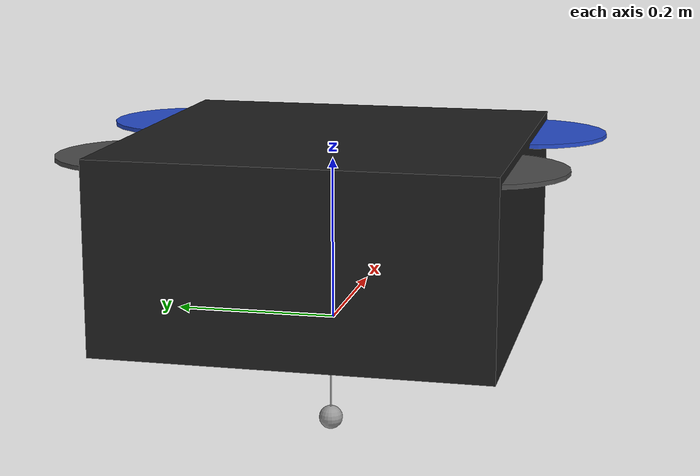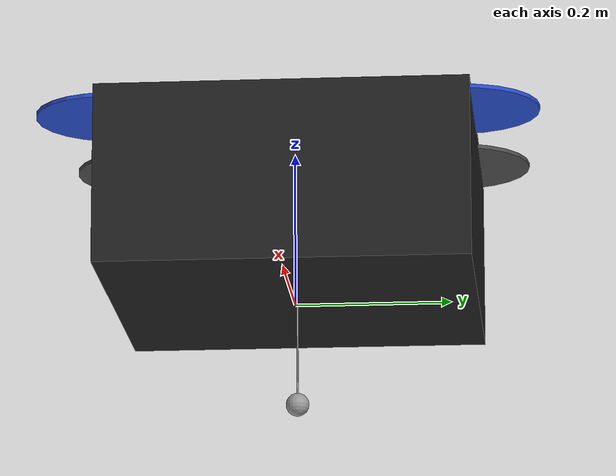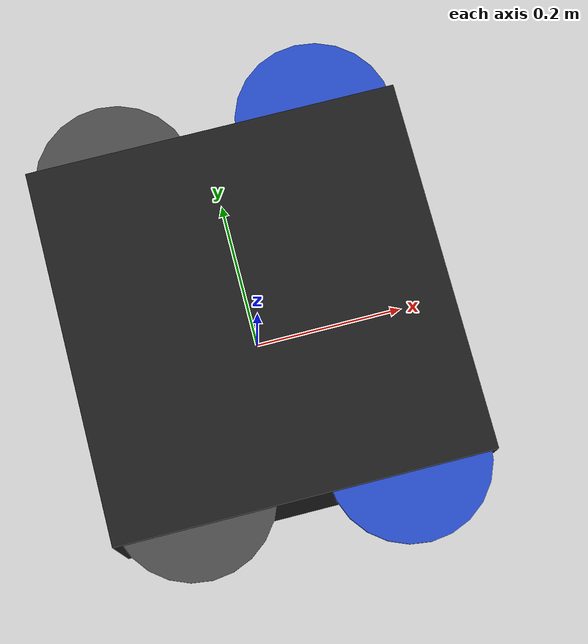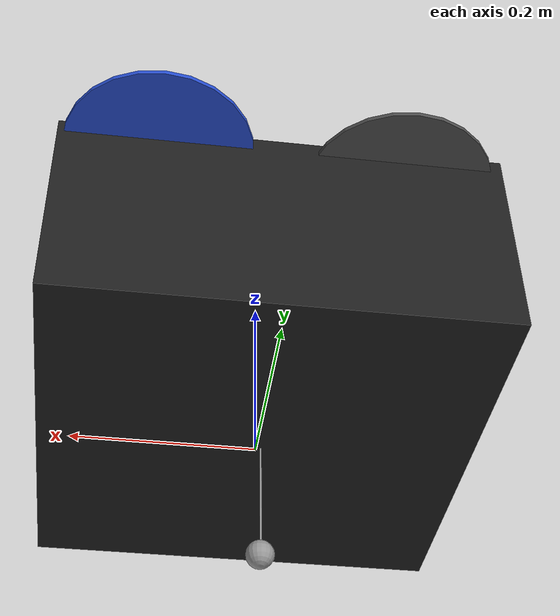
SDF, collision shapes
<?xml version='1.0'?>
<sdf version='1.7'>
  <model name='drone_kinect_fixed_rope5'>
    <link name='cam_link'>
      <pose>0.055559 0 -0.02 0 -0 0</pose>
      <inertial>
        <mass>0.01</mass>
        <inertia>
          <ixx>0.001</ixx>
          <iyy>0.001</iyy>
          <izz>0.001</izz>
          <ixy>0</ixy>
          <ixz>0</ixz>
          <iyz>0</iyz>
        </inertia>
        <pose>0 0 0 0 -0 0</pose>
      </inertial>
      <sensor name='cam' type='camera'>
        <pose>0 0 0.15 0 -0 0</pose>
        <camera>
          <horizontal_fov>1.2</horizontal_fov>
          <image>
            <width>640</width>
            <height>480</height>
          </image>
          <clip>
            <near>0.1</near>
            <far>1000</far>
          </clip>
        </camera>
        <always_on>1</always_on>
        <update_rate>30</update_rate>
        <visualize>1</visualize>
        <plugin name='camera_controller' filename='libgazebo_ros_camera.so'>
          <always_on>1</always_on>
          <update_rate>30</update_rate>
          <cameraName>webcam</cameraName>
          <imageTopicName>image_raw</imageTopicName>
          <cameraInfoTopicName>camera_info</cameraInfoTopicName>
          <frameName>camera_link</frameName>
        </plugin>
      </sensor>
      <self_collide>0</self_collide>
      <enable_wind>0</enable_wind>
      <kinematic>0</kinematic>
      <visual name='cam_link'>
        <pose>0 0 0.15 0 1.5707 0</pose>
        <geometry>
          <cylinder>
            <radius>0.005</radius>
            <length>0.018</length>
          </cylinder>
        </geometry>
        <material>
          <shader type='pixel'/>
        </material>
        <transparency>0</transparency>
        <cast_shadows>1</cast_shadows>
      </visual>
    </link>
    <link name='iris::base_link'>
      <velocity_decay>
        <linear>0</linear>
        <angular>0</angular>
      </velocity_decay>
      <inertial>
        <pose>0 0 0 0 -0 0</pose>
        <mass>1.5</mass>
        <inertia>
          <ixx>0.008</ixx>
          <ixy>0</ixy>
          <ixz>0</ixz>
          <iyy>0.015</iyy>
          <iyz>0</iyz>
          <izz>0.017</izz>
        </inertia>
      </inertial>
      <pose>0 0 0.195685 0 -0 0</pose>
      <self_collide>0</self_collide>
      <enable_wind>0</enable_wind>
      <kinematic>0</kinematic>
      <gravity>1</gravity>
      <visual name='front_right_leg_visual'>
        <pose>0.123 -0.22 -0.11 0 -0 0</pose>
        <geometry>
          <cylinder>
            <radius>0.005</radius>
            <length>0.17</length>
          </cylinder>
        </geometry>
        <material>
          <script>
            <name>Gazebo/FlatBlack</name>
            <uri>file://media/materials/scripts/gazebo.material</uri>
          </script>
          <shader type='pixel'/>
          <emissive>0 0 0 1</emissive>
        </material>
        <transparency>0</transparency>
        <cast_shadows>1</cast_shadows>
      </visual>
      <visual name='rear_right_leg_visual'>
        <pose>-0.14 -0.21 -0.11 0 -0 0</pose>
        <geometry>
          <cylinder>
            <radius>0.005</radius>
            <length>0.17</length>
          </cylinder>
        </geometry>
        <material>
          <script>
            <name>Gazebo/FlatBlack</name>
            <uri>file://media/materials/scripts/gazebo.material</uri>
          </script>
          <shader type='pixel'/>
          <emissive>0 0 0 1</emissive>
        </material>
        <transparency>0</transparency>
        <cast_shadows>1</cast_shadows>
      </visual>
      <visual name='base_link_visual'>
        <geometry>
          <mesh>
            <uri>model://iris_base/meshes/iris.dae</uri>
          </mesh>
        </geometry>
        <material>
          <script>
            <name>Gazebo/DarkGrey</name>
            <uri>__default__</uri>
          </script>
          <shader type='pixel'/>
          <emissive>0 0 0 1</emissive>
        </material>
        <pose>0 0 0 0 -0 0</pose>
        <transparency>0</transparency>
        <cast_shadows>1</cast_shadows>
      </visual>
      <visual name='front_left_leg_visual'>
        <pose>0.123 0.22 -0.11 0 -0 0</pose>
        <geometry>
          <cylinder>
            <radius>0.005</radius>
            <length>0.17</length>
          </cylinder>
        </geometry>
        <material>
          <script>
            <name>Gazebo/FlatBlack</name>
            <uri>file://media/materials/scripts/gazebo.material</uri>
          </script>
          <shader type='pixel'/>
          <emissive>0 0 0 1</emissive>
        </material>
        <transparency>0</transparency>
        <cast_shadows>1</cast_shadows>
      </visual>
      <visual name='rear_left_leg_visual'>
        <pose>-0.14 0.21 -0.11 0 -0 0</pose>
        <geometry>
          <cylinder>
            <radius>0.005</radius>
            <length>0.17</length>
          </cylinder>
        </geometry>
        <material>
          <script>
            <name>Gazebo/FlatBlack</name>
            <uri>file://media/materials/scripts/gazebo.material</uri>
          </script>
          <shader type='pixel'/>
          <emissive>0 0 0 1</emissive>
        </material>
        <transparency>0</transparency>
        <cast_shadows>1</cast_shadows>
      </visual>
      <collision name='base_link_collision'>
        <laser_retro>0</laser_retro>
        <max_contacts>10</max_contacts>
        <pose>0 0 -0.08 0 -0 0</pose>
        <geometry>
          <box>
            <size>0.47 0.47 0.23</size>
          </box>
        </geometry>
        <surface>
          <friction>
            <ode>
              <mu>1</mu>
              <mu2>1</mu2>
              <fdir1>0 0 0</fdir1>
              <slip1>0</slip1>
              <slip2>0</slip2>
            </ode>
            <torsional>
              <coefficient>1</coefficient>
              <patch_radius>0</patch_radius>
              <surface_radius>0</surface_radius>
              <use_patch_radius>1</use_patch_radius>
              <ode>
                <slip>0</slip>
              </ode>
            </torsional>
          </friction>
          <bounce>
            <restitution_coefficient>0</restitution_coefficient>
            <threshold>1e+06</threshold>
          </bounce>
          <contact>
            <collide_without_contact>0</collide_without_contact>
            <collide_without_contact_bitmask>1</collide_without_contact_bitmask>
            <collide_bitmask>1</collide_bitmask>
            <ode>
              <soft_cfm>0</soft_cfm>
              <soft_erp>0.2</soft_erp>
              <kp>1e+13</kp>
              <kd>1</kd>
              <max_vel>100</max_vel>
              <min_depth>0.001</min_depth>
            </ode>
            <bullet>
              <split_impulse>1</split_impulse>
              <split_impulse_penetration_threshold>-0.01</split_impulse_penetration_threshold>
              <soft_cfm>0</soft_cfm>
              <soft_erp>0.2</soft_erp>
              <kp>1e+13</kp>
              <kd>1</kd>
            </bullet>
          </contact>
        </surface>
      </collision>
    </link>
    <link name='iris::iris/ground_truth/odometry_sensorgt_link'>
      <pose>0 0 0.194923 0 -0 0</pose>
      <inertial>
        <pose>0 0 0 0 -0 0</pose>
        <mass>0.15</mass>
        <inertia>
          <ixx>0.0001</ixx>
          <ixy>0</ixy>
          <ixz>0</ixz>
          <iyy>0.0002</iyy>
          <iyz>0</iyz>
          <izz>0.0002</izz>
        </inertia>
      </inertial>
      <self_collide>0</self_collide>
      <enable_wind>0</enable_wind>
      <kinematic>0</kinematic>
    </link>
    <link name='iris::iris/imu_link'>
      <inertial>
        <pose>0 0 0 0 -0 0</pose>
        <mass>0.15</mass>
        <inertia>
          <ixx>1e-05</ixx>
          <ixy>0</ixy>
          <ixz>0</ixz>
          <iyy>2e-05</iyy>
          <iyz>0</iyz>
          <izz>2e-05</izz>
        </inertia>
      </inertial>
      <sensor name='imu_sensor' type='imu'>
        <pose>0 0 0 -3.14159 -0 0</pose>
        <always_on>1</always_on>
        <update_rate>1000</update_rate>
        <imu/>
      </sensor>
      <pose>0 0 0.194923 0 -0 0</pose>
      <self_collide>0</self_collide>
      <enable_wind>0</enable_wind>
      <kinematic>0</kinematic>
    </link>
    <link name='iris::rotor_0'>
      <pose>0.13 -0.22 0.217923 0 -0 0</pose>
      <inertial>
        <pose>0 0 0 0 -0 0</pose>
        <mass>0.025</mass>
        <inertia>
          <ixx>9.75e-06</ixx>
          <ixy>0</ixy>
          <ixz>0</ixz>
          <iyy>0.000166704</iyy>
          <iyz>0</iyz>
          <izz>0.000167604</izz>
        </inertia>
      </inertial>
      <gravity>1</gravity>
      <velocity_decay/>
      <self_collide>0</self_collide>
      <enable_wind>0</enable_wind>
      <kinematic>0</kinematic>
      <visual name='rotor_0_visual'>
        <pose>0 0 0 0 -0 0</pose>
        <geometry>
          <mesh>
            <scale>1 1 1</scale>
            <uri>model://iris_base/meshes/iris_prop_ccw.dae</uri>
          </mesh>
        </geometry>
        <material>
          <script>
            <name>Gazebo/Blue</name>
            <uri>__default__</uri>
          </script>
          <shader type='pixel'/>
          <emissive>0 0 0 1</emissive>
        </material>
        <transparency>0</transparency>
        <cast_shadows>1</cast_shadows>
      </visual>
      <collision name='rotor_0_collision'>
        <laser_retro>0</laser_retro>
        <max_contacts>10</max_contacts>
        <pose>0 0 0 0 -0 0</pose>
        <geometry>
          <cylinder>
            <radius>0.1</radius>
            <length>0.005</length>
          </cylinder>
        </geometry>
        <surface>
          <friction>
            <ode>
              <mu>1</mu>
              <mu2>1</mu2>
              <fdir1>0 0 0</fdir1>
              <slip1>0</slip1>
              <slip2>0</slip2>
            </ode>
            <torsional>
              <coefficient>1</coefficient>
              <patch_radius>0</patch_radius>
              <surface_radius>0</surface_radius>
              <use_patch_radius>1</use_patch_radius>
              <ode>
                <slip>0</slip>
              </ode>
            </torsional>
          </friction>
          <bounce>
            <restitution_coefficient>0</restitution_coefficient>
            <threshold>1e+06</threshold>
          </bounce>
          <contact>
            <collide_without_contact>0</collide_without_contact>
            <collide_without_contact_bitmask>1</collide_without_contact_bitmask>
            <collide_bitmask>1</collide_bitmask>
            <ode>
              <soft_cfm>0</soft_cfm>
              <soft_erp>0.2</soft_erp>
              <kp>1e+13</kp>
              <kd>1</kd>
              <max_vel>0.01</max_vel>
              <min_depth>0</min_depth>
            </ode>
            <bullet>
              <split_impulse>1</split_impulse>
              <split_impulse_penetration_threshold>-0.01</split_impulse_penetration_threshold>
              <soft_cfm>0</soft_cfm>
              <soft_erp>0.2</soft_erp>
              <kp>1e+13</kp>
              <kd>1</kd>
            </bullet>
          </contact>
        </surface>
      </collision>
    </link>
    <link name='iris::rotor_1'>
      <pose>-0.13 0.2 0.217923 0 -0 0</pose>
      <inertial>
        <pose>0 0 0 0 -0 0</pose>
        <mass>0.025</mass>
        <inertia>
          <ixx>9.75e-06</ixx>
          <ixy>0</ixy>
          <ixz>0</ixz>
          <iyy>0.000166704</iyy>
          <iyz>0</iyz>
          <izz>0.000167604</izz>
        </inertia>
      </inertial>
      <gravity>1</gravity>
      <velocity_decay/>
      <self_collide>0</self_collide>
      <enable_wind>0</enable_wind>
      <kinematic>0</kinematic>
      <visual name='rotor_1_visual'>
        <pose>0 0 0 0 -0 0</pose>
        <geometry>
          <mesh>
            <scale>1 1 1</scale>
            <uri>model://iris_base/meshes/iris_prop_ccw.dae</uri>
          </mesh>
        </geometry>
        <material>
          <script>
            <name>Gazebo/DarkGrey</name>
            <uri>__default__</uri>
          </script>
          <shader type='pixel'/>
        </material>
        <transparency>0</transparency>
        <cast_shadows>1</cast_shadows>
      </visual>
      <collision name='rotor_1_collision'>
        <laser_retro>0</laser_retro>
        <max_contacts>10</max_contacts>
        <pose>0 0 0 0 -0 0</pose>
        <geometry>
          <cylinder>
            <radius>0.1</radius>
            <length>0.005</length>
          </cylinder>
        </geometry>
        <surface>
          <friction>
            <ode>
              <mu>1</mu>
              <mu2>1</mu2>
              <fdir1>0 0 0</fdir1>
              <slip1>0</slip1>
              <slip2>0</slip2>
            </ode>
            <torsional>
              <coefficient>1</coefficient>
              <patch_radius>0</patch_radius>
              <surface_radius>0</surface_radius>
              <use_patch_radius>1</use_patch_radius>
              <ode>
                <slip>0</slip>
              </ode>
            </torsional>
          </friction>
          <bounce>
            <restitution_coefficient>0</restitution_coefficient>
            <threshold>1e+06</threshold>
          </bounce>
          <contact>
            <collide_without_contact>0</collide_without_contact>
            <collide_without_contact_bitmask>1</collide_without_contact_bitmask>
            <collide_bitmask>1</collide_bitmask>
            <ode>
              <soft_cfm>0</soft_cfm>
              <soft_erp>0.2</soft_erp>
              <kp>1e+13</kp>
              <kd>1</kd>
              <max_vel>0.01</max_vel>
              <min_depth>0</min_depth>
            </ode>
            <bullet>
              <split_impulse>1</split_impulse>
              <split_impulse_penetration_threshold>-0.01</split_impulse_penetration_threshold>
              <soft_cfm>0</soft_cfm>
              <soft_erp>0.2</soft_erp>
              <kp>1e+13</kp>
              <kd>1</kd>
            </bullet>
          </contact>
        </surface>
      </collision>
    </link>
    <link name='iris::rotor_2'>
      <pose>0.13 0.22 0.217923 0 -0 0</pose>
      <inertial>
        <pose>0 0 0 0 -0 0</pose>
        <mass>0.025</mass>
        <inertia>
          <ixx>9.75e-06</ixx>
          <ixy>0</ixy>
          <ixz>0</ixz>
          <iyy>0.000166704</iyy>
          <iyz>0</iyz>
          <izz>0.000167604</izz>
        </inertia>
      </inertial>
      <gravity>1</gravity>
      <velocity_decay/>
      <self_collide>0</self_collide>
      <enable_wind>0</enable_wind>
      <kinematic>0</kinematic>
      <visual name='rotor_2_visual'>
        <pose>0 0 0 0 -0 0</pose>
        <geometry>
          <mesh>
            <scale>1 1 1</scale>
            <uri>model://iris_base/meshes/iris_prop_cw.dae</uri>
          </mesh>
        </geometry>
        <material>
          <script>
            <name>Gazebo/Blue</name>
            <uri>__default__</uri>
          </script>
          <shader type='pixel'/>
        </material>
        <transparency>0</transparency>
        <cast_shadows>1</cast_shadows>
      </visual>
      <collision name='rotor_2_collision'>
        <laser_retro>0</laser_retro>
        <max_contacts>10</max_contacts>
        <pose>0 0 0 0 -0 0</pose>
        <geometry>
          <cylinder>
            <radius>0.1</radius>
            <length>0.005</length>
          </cylinder>
        </geometry>
        <surface>
          <friction>
            <ode>
              <mu>1</mu>
              <mu2>1</mu2>
              <fdir1>0 0 0</fdir1>
              <slip1>0</slip1>
              <slip2>0</slip2>
            </ode>
            <torsional>
              <coefficient>1</coefficient>
              <patch_radius>0</patch_radius>
              <surface_radius>0</surface_radius>
              <use_patch_radius>1</use_patch_radius>
              <ode>
                <slip>0</slip>
              </ode>
            </torsional>
          </friction>
          <bounce>
            <restitution_coefficient>0</restitution_coefficient>
            <threshold>1e+06</threshold>
          </bounce>
          <contact>
            <collide_without_contact>0</collide_without_contact>
            <collide_without_contact_bitmask>1</collide_without_contact_bitmask>
            <collide_bitmask>1</collide_bitmask>
            <ode>
              <soft_cfm>0</soft_cfm>
              <soft_erp>0.2</soft_erp>
              <kp>1e+13</kp>
              <kd>1</kd>
              <max_vel>0.01</max_vel>
              <min_depth>0</min_depth>
            </ode>
            <bullet>
              <split_impulse>1</split_impulse>
              <split_impulse_penetration_threshold>-0.01</split_impulse_penetration_threshold>
              <soft_cfm>0</soft_cfm>
              <soft_erp>0.2</soft_erp>
              <kp>1e+13</kp>
              <kd>1</kd>
            </bullet>
          </contact>
        </surface>
      </collision>
    </link>
    <link name='iris::rotor_3'>
      <pose>-0.13 -0.2 0.217923 0 -0 0</pose>
      <inertial>
        <pose>0 0 0 0 -0 0</pose>
        <mass>0.025</mass>
        <inertia>
          <ixx>9.75e-06</ixx>
          <ixy>0</ixy>
          <ixz>0</ixz>
          <iyy>0.000166704</iyy>
          <iyz>0</iyz>
          <izz>0.000167604</izz>
        </inertia>
      </inertial>
      <gravity>1</gravity>
      <velocity_decay/>
      <self_collide>0</self_collide>
      <enable_wind>0</enable_wind>
      <kinematic>0</kinematic>
      <visual name='rotor_3_visual'>
        <pose>0 0 0 0 -0 0</pose>
        <geometry>
          <mesh>
            <scale>1 1 1</scale>
            <uri>model://iris_base/meshes/iris_prop_cw.dae</uri>
          </mesh>
        </geometry>
        <material>
          <script>
            <name>Gazebo/DarkGrey</name>
            <uri>__default__</uri>
          </script>
          <shader type='pixel'/>
          <emissive>0 0 0 1</emissive>
        </material>
        <transparency>0</transparency>
        <cast_shadows>1</cast_shadows>
      </visual>
      <collision name='rotor_3_collision'>
        <laser_retro>0</laser_retro>
        <max_contacts>10</max_contacts>
        <pose>0 0 0 0 -0 0</pose>
        <geometry>
          <cylinder>
            <radius>0.1</radius>
            <length>0.005</length>
          </cylinder>
        </geometry>
        <surface>
          <friction>
            <ode>
              <mu>1</mu>
              <mu2>1</mu2>
              <fdir1>0 0 0</fdir1>
              <slip1>0</slip1>
              <slip2>0</slip2>
            </ode>
            <torsional>
              <coefficient>1</coefficient>
              <patch_radius>0</patch_radius>
              <surface_radius>0</surface_radius>
              <use_patch_radius>1</use_patch_radius>
              <ode>
                <slip>0</slip>
              </ode>
            </torsional>
          </friction>
          <bounce>
            <restitution_coefficient>0</restitution_coefficient>
            <threshold>1e+06</threshold>
          </bounce>
          <contact>
            <collide_without_contact>0</collide_without_contact>
            <collide_without_contact_bitmask>1</collide_without_contact_bitmask>
            <collide_bitmask>1</collide_bitmask>
            <ode>
              <soft_cfm>0</soft_cfm>
              <soft_erp>0.2</soft_erp>
              <kp>1e+13</kp>
              <kd>1</kd>
              <max_vel>0.01</max_vel>
              <min_depth>0</min_depth>
            </ode>
            <bullet>
              <split_impulse>1</split_impulse>
              <split_impulse_penetration_threshold>-0.01</split_impulse_penetration_threshold>
              <soft_cfm>0</soft_cfm>
              <soft_erp>0.2</soft_erp>
              <kp>1e+13</kp>
              <kd>1</kd>
            </bullet>
          </contact>
        </surface>
      </collision>
    </link>
    <link name='link_0'>
      <inertial>
        <mass>0.0005</mass>
        <inertia>
          <ixx>3.76e-06</ixx>
          <ixy>0</ixy>
          <ixz>0</ixz>
          <iyy>3.76e-06</iyy>
          <iyz>0</iyz>
          <izz>3e-08</izz>
        </inertia>
        <pose>0 0 0 0 -0 0</pose>
      </inertial>
      <pose>-0.005226 0.001963 0.022099 0.000603 -2e-06 0</pose>
      <gravity>1</gravity>
      <self_collide>0</self_collide>
      <kinematic>0</kinematic>
      <enable_wind>0</enable_wind>
      <visual name='visual'>
        <pose>0 0 0 0 -0 0</pose>
        <geometry>
          <cylinder>
            <radius>0.001</radius>
            <length>0.3</length>
          </cylinder>
        </geometry>
        <material>
          <lighting>1</lighting>
          <script>
            <uri>file://media/materials/scripts/gazebo.material</uri>
            <name>Gazebo/Grey</name>
          </script>
          <shader type='pixel'>
            <normal_map>__default__</normal_map>
          </shader>
          <ambient>0.3 0.3 0.3 1</ambient>
          <diffuse>0.7 0.7 0.7 1</diffuse>
          <specular>0.01 0.01 0.01 1</specular>
          <emissive>0 0 0 1</emissive>
        </material>
        <transparency>0</transparency>
        <cast_shadows>1</cast_shadows>
      </visual>
      <collision name='collision'>
        <laser_retro>0</laser_retro>
        <max_contacts>10</max_contacts>
        <pose>0 0 0 0 -0 0</pose>
        <geometry>
          <cylinder>
            <radius>0.001</radius>
            <length>0.3</length>
          </cylinder>
        </geometry>
        <surface>
          <friction>
            <ode>
              <mu>1</mu>
              <mu2>1</mu2>
              <fdir1>0 0 0</fdir1>
              <slip1>0</slip1>
              <slip2>0</slip2>
            </ode>
            <torsional>
              <coefficient>1</coefficient>
              <patch_radius>0</patch_radius>
              <surface_radius>0</surface_radius>
              <use_patch_radius>1</use_patch_radius>
              <ode>
                <slip>0</slip>
              </ode>
            </torsional>
          </friction>
          <bounce>
            <restitution_coefficient>0</restitution_coefficient>
            <threshold>1e+06</threshold>
          </bounce>
          <contact>
            <collide_without_contact>0</collide_without_contact>
            <collide_without_contact_bitmask>1</collide_without_contact_bitmask>
            <collide_bitmask>1</collide_bitmask>
            <ode>
              <soft_cfm>0</soft_cfm>
              <soft_erp>0.2</soft_erp>
              <kp>1e+13</kp>
              <kd>1</kd>
              <max_vel>0.01</max_vel>
              <min_depth>0</min_depth>
            </ode>
            <bullet>
              <split_impulse>1</split_impulse>
              <split_impulse_penetration_threshold>-0.01</split_impulse_penetration_threshold>
              <soft_cfm>0</soft_cfm>
              <soft_erp>0.2</soft_erp>
              <kp>1e+13</kp>
              <kd>1</kd>
            </bullet>
          </contact>
        </surface>
      </collision>
    </link>
    <link name='link_1'>
      <inertial>
        <mass>0.003</mass>
        <inertia>
          <ixx>4.8e-07</ixx>
          <ixy>0</ixy>
          <ixz>0</ixz>
          <iyy>4.8e-07</iyy>
          <iyz>0</iyz>
          <izz>4.8e-07</izz>
        </inertia>
        <pose>0 0 0 0 -0 0</pose>
      </inertial>
      <pose>-0.004309 0.00203 -0.130135 0.000603 -2e-06 0</pose>
      <gravity>1</gravity>
      <self_collide>0</self_collide>
      <kinematic>0</kinematic>
      <enable_wind>0</enable_wind>
      <visual name='visual'>
        <pose>0 0 0 0 -0 0</pose>
        <geometry>
          <sphere>
            <radius>0.015</radius>
          </sphere>
        </geometry>
        <material>
          <lighting>1</lighting>
          <script>
            <uri>file://media/materials/scripts/gazebo.material</uri>
            <name>Gazebo/Grey</name>
          </script>
          <shader type='pixel'>
            <normal_map>__default__</normal_map>
          </shader>
          <ambient>0.3 0.3 0.3 1</ambient>
          <diffuse>0.7 0.7 0.7 1</diffuse>
          <specular>0.01 0.01 0.01 1</specular>
          <emissive>0 0 0 1</emissive>
        </material>
        <transparency>0</transparency>
        <cast_shadows>1</cast_shadows>
      </visual>
      <collision name='collision'>
        <laser_retro>0</laser_retro>
        <max_contacts>10</max_contacts>
        <pose>0 0 0 0 -0 0</pose>
        <geometry>
          <sphere>
            <radius>0.015</radius>
          </sphere>
        </geometry>
        <surface>
          <friction>
            <ode>
              <mu>1</mu>
              <mu2>1</mu2>
              <fdir1>0 0 0</fdir1>
              <slip1>0</slip1>
              <slip2>0</slip2>
            </ode>
            <torsional>
              <coefficient>1</coefficient>
              <patch_radius>0</patch_radius>
              <surface_radius>0</surface_radius>
              <use_patch_radius>1</use_patch_radius>
              <ode>
                <slip>0</slip>
              </ode>
            </torsional>
          </friction>
          <bounce>
            <restitution_coefficient>0</restitution_coefficient>
            <threshold>1e+06</threshold>
          </bounce>
          <contact>
            <collide_without_contact>0</collide_without_contact>
            <collide_without_contact_bitmask>1</collide_without_contact_bitmask>
            <collide_bitmask>1</collide_bitmask>
            <ode>
              <soft_cfm>0</soft_cfm>
              <soft_erp>0.2</soft_erp>
              <kp>1e+13</kp>
              <kd>1</kd>
              <max_vel>0.01</max_vel>
              <min_depth>0</min_depth>
            </ode>
            <bullet>
              <split_impulse>1</split_impulse>
              <split_impulse_penetration_threshold>-0.01</split_impulse_penetration_threshold>
              <soft_cfm>0</soft_cfm>
              <soft_erp>0.2</soft_erp>
              <kp>1e+13</kp>
              <kd>1</kd>
            </bullet>
          </contact>
        </surface>
      </collision>
    </link>
    <joint name='base_link_JOINT_0' type='ball'>
      <parent>iris::base_link</parent>
      <child>link_0</child>
      <pose>0 0 0.2 0 -0 0</pose>
      <physics>
        <ode>
          <limit>
            <cfm>0</cfm>
            <erp>0.2</erp>
          </limit>
          <suspension>
            <cfm>0</cfm>
            <erp>0.2</erp>
          </suspension>
        </ode>
      </physics>
    </joint>
    <joint name='camera_mount' type='fixed'>
      <parent>iris::base_link</parent>
      <child>cam_link</child>
      <pose>0 0 0 0 -0 0</pose>
      <physics>
        <ode>
          <limit>
            <cfm>0</cfm>
            <erp>0.2</erp>
          </limit>
          <suspension>
            <cfm>0</cfm>
            <erp>0.2</erp>
          </suspension>
        </ode>
      </physics>
    </joint>
    <joint name='iris::iris/ground_truth/odometry_sensorgt_joint' type='revolute'>
      <parent>iris::base_link</parent>
      <child>iris::iris/ground_truth/odometry_sensorgt_link</child>
      <pose>0 0 0 0 -0 0</pose>
      <axis>
        <xyz>0 0 1</xyz>
        <limit>
          <lower>0</lower>
          <upper>0</upper>
          <effort>0</effort>
          <velocity>0</velocity>
        </limit>
        <dynamics>
          <spring_reference>0</spring_reference>
          <spring_stiffness>0</spring_stiffness>
          <damping>1</damping>
          <friction>0</friction>
        </dynamics>
      </axis>
      <physics>
        <ode>
          <limit>
            <cfm>0</cfm>
            <erp>0.2</erp>
          </limit>
          <suspension>
            <cfm>0</cfm>
            <erp>0.2</erp>
          </suspension>
        </ode>
      </physics>
    </joint>
    <joint name='iris::iris/imu_joint' type='revolute'>
      <parent>iris::base_link</parent>
      <child>iris::iris/imu_link</child>
      <pose>0 0 0 0 -0 0</pose>
      <axis>
        <xyz>0 0 1</xyz>
        <limit>
          <lower>0</lower>
          <upper>0</upper>
          <effort>0</effort>
          <velocity>0</velocity>
        </limit>
        <dynamics>
          <spring_reference>0</spring_reference>
          <spring_stiffness>0</spring_stiffness>
          <damping>1</damping>
          <friction>0</friction>
        </dynamics>
      </axis>
      <physics>
        <ode>
          <limit>
            <cfm>0</cfm>
            <erp>0.2</erp>
          </limit>
          <suspension>
            <cfm>0</cfm>
            <erp>0.2</erp>
          </suspension>
        </ode>
      </physics>
    </joint>
    <joint name='iris::rotor_0_joint' type='revolute'>
      <parent>iris::base_link</parent>
      <child>iris::rotor_0</child>
      <pose>0 0 0 0 -0 0</pose>
      <axis>
        <xyz>0 0 1</xyz>
        <limit>
          <lower>-1e+16</lower>
          <upper>1e+16</upper>
          <effort>-1</effort>
          <velocity>-1</velocity>
        </limit>
        <dynamics>
          <spring_reference>0</spring_reference>
          <spring_stiffness>0</spring_stiffness>
          <damping>0.004</damping>
          <friction>0</friction>
        </dynamics>
      </axis>
      <physics>
        <ode>
          <limit>
            <cfm>0</cfm>
            <erp>0.2</erp>
          </limit>
          <suspension>
            <cfm>0</cfm>
            <erp>0.2</erp>
          </suspension>
        </ode>
      </physics>
    </joint>
    <joint name='iris::rotor_1_joint' type='revolute'>
      <parent>iris::base_link</parent>
      <child>iris::rotor_1</child>
      <pose>0 0 0 0 -0 0</pose>
      <axis>
        <xyz>0 0 1</xyz>
        <limit>
          <lower>-1e+16</lower>
          <upper>1e+16</upper>
          <effort>-1</effort>
          <velocity>-1</velocity>
        </limit>
        <dynamics>
          <spring_reference>0</spring_reference>
          <spring_stiffness>0</spring_stiffness>
          <damping>0.004</damping>
          <friction>0</friction>
        </dynamics>
      </axis>
      <physics>
        <ode>
          <limit>
            <cfm>0</cfm>
            <erp>0.2</erp>
          </limit>
          <suspension>
            <cfm>0</cfm>
            <erp>0.2</erp>
          </suspension>
        </ode>
      </physics>
    </joint>
    <joint name='iris::rotor_2_joint' type='revolute'>
      <parent>iris::base_link</parent>
      <child>iris::rotor_2</child>
      <pose>0 0 0 0 -0 0</pose>
      <axis>
        <xyz>0 0 1</xyz>
        <limit>
          <lower>-1e+16</lower>
          <upper>1e+16</upper>
          <effort>-1</effort>
          <velocity>-1</velocity>
        </limit>
        <dynamics>
          <spring_reference>0</spring_reference>
          <spring_stiffness>0</spring_stiffness>
          <damping>0.004</damping>
          <friction>0</friction>
        </dynamics>
      </axis>
      <physics>
        <ode>
          <limit>
            <cfm>0</cfm>
            <erp>0.2</erp>
          </limit>
          <suspension>
            <cfm>0</cfm>
            <erp>0.2</erp>
          </suspension>
        </ode>
      </physics>
    </joint>
    <joint name='iris::rotor_3_joint' type='revolute'>
      <parent>iris::base_link</parent>
      <child>iris::rotor_3</child>
      <pose>0 0 0 0 -0 0</pose>
      <axis>
        <xyz>0 0 1</xyz>
        <limit>
          <lower>-1e+16</lower>
          <upper>1e+16</upper>
          <effort>-1</effort>
          <velocity>-1</velocity>
        </limit>
        <dynamics>
          <spring_reference>0</spring_reference>
          <spring_stiffness>0</spring_stiffness>
          <damping>0.004</damping>
          <friction>0</friction>
        </dynamics>
      </axis>
      <physics>
        <ode>
          <limit>
            <cfm>0</cfm>
            <erp>0.2</erp>
          </limit>
          <suspension>
            <cfm>0</cfm>
            <erp>0.2</erp>
          </suspension>
        </ode>
      </physics>
    </joint>
    <joint name='link_0_JOINT_1' type='fixed'>
      <parent>link_0</parent>
      <child>link_1</child>
      <pose>0 0 -0 0 -0 0</pose>
      <physics>
        <ode>
          <limit>
            <cfm>0</cfm>
            <erp>0.2</erp>
          </limit>
          <suspension>
            <cfm>0</cfm>
            <erp>0.2</erp>
          </suspension>
        </ode>
      </physics>
    </joint>
    <static>0</static>
    <allow_auto_disable>1</allow_auto_disable>
    <plugin name='arducopter_plugin' filename='libArduPilotPlugin.so'>
      <fdm_addr>127.0.0.1</fdm_addr>
      <fdm_port_in>9002</fdm_port_in>
      <fdm_port_out>9003</fdm_port_out>
      <modelXYZToAirplaneXForwardZDown>0 0 0 3.141593 0 0</modelXYZToAirplaneXForwardZDown>
      <gazeboXYZToNED>0 0 0 3.141593 0 0</gazeboXYZToNED>
      <imuName>iris::iris/imu_link::imu_sensor</imuName>
      <connectionTimeoutMaxCount>5</connectionTimeoutMaxCount>
      <control channel='0'>
        <type>VELOCITY</type>
        <offset>0</offset>
        <p_gain>0.20</p_gain>
        <i_gain>0</i_gain>
        <d_gain>0</d_gain>
        <i_max>0</i_max>
        <i_min>0</i_min>
        <cmd_max>2.5</cmd_max>
        <cmd_min>-2.5</cmd_min>
        <jointName>iris::rotor_0_joint</jointName>
        <multiplier>838</multiplier>
        <controlVelocitySlowdownSim>1</controlVelocitySlowdownSim>
      </control>
      <control channel='1'>
        <type>VELOCITY</type>
        <offset>0</offset>
        <p_gain>0.20</p_gain>
        <i_gain>0</i_gain>
        <d_gain>0</d_gain>
        <i_max>0</i_max>
        <i_min>0</i_min>
        <cmd_max>2.5</cmd_max>
        <cmd_min>-2.5</cmd_min>
        <jointName>iris::rotor_1_joint</jointName>
        <multiplier>838</multiplier>
        <controlVelocitySlowdownSim>1</controlVelocitySlowdownSim>
      </control>
      <control channel='2'>
        <type>VELOCITY</type>
        <offset>0</offset>
        <p_gain>0.20</p_gain>
        <i_gain>0</i_gain>
        <d_gain>0</d_gain>
        <i_max>0</i_max>
        <i_min>0</i_min>
        <cmd_max>2.5</cmd_max>
        <cmd_min>-2.5</cmd_min>
        <jointName>iris::rotor_2_joint</jointName>
        <multiplier>-838</multiplier>
        <controlVelocitySlowdownSim>1</controlVelocitySlowdownSim>
      </control>
      <control channel='3'>
        <type>VELOCITY</type>
        <offset>0</offset>
        <p_gain>0.20</p_gain>
        <i_gain>0</i_gain>
        <d_gain>0</d_gain>
        <i_max>0</i_max>
        <i_min>0</i_min>
        <cmd_max>2.5</cmd_max>
        <cmd_min>-2.5</cmd_min>
        <jointName>iris::rotor_3_joint</jointName>
        <multiplier>-838</multiplier>
        <controlVelocitySlowdownSim>1</controlVelocitySlowdownSim>
      </control>
    </plugin>
    <plugin name='rotor_0_blade_1' filename='libLiftDragPlugin.so'>
      <a0>0.3</a0>
      <alpha_stall>1.4</alpha_stall>
      <cla>4.2500</cla>
      <cda>0.10</cda>
      <cma>0.00</cma>
      <cla_stall>-0.025</cla_stall>
      <cda_stall>0.0</cda_stall>
      <cma_stall>0.0</cma_stall>
      <area>0.002</area>
      <air_density>1.2041</air_density>
      <cp>0.084 0 0</cp>
      <forward>0 1 0</forward>
      <upward>0 0 1</upward>
      <link_name>iris::rotor_0</link_name>
    </plugin>
    <plugin name='rotor_0_blade_2' filename='libLiftDragPlugin.so'>
      <a0>0.3</a0>
      <alpha_stall>1.4</alpha_stall>
      <cla>4.2500</cla>
      <cda>0.10</cda>
      <cma>0.00</cma>
      <cla_stall>-0.025</cla_stall>
      <cda_stall>0.0</cda_stall>
      <cma_stall>0.0</cma_stall>
      <area>0.002</area>
      <air_density>1.2041</air_density>
      <cp>-0.084 0 0</cp>
      <forward>0 -1 0</forward>
      <upward>0 0 1</upward>
      <link_name>iris::rotor_0</link_name>
    </plugin>
    <plugin name='rotor_1_blade_1' filename='libLiftDragPlugin.so'>
      <a0>0.3</a0>
      <alpha_stall>1.4</alpha_stall>
      <cla>4.2500</cla>
      <cda>0.10</cda>
      <cma>0.00</cma>
      <cla_stall>-0.025</cla_stall>
      <cda_stall>0.0</cda_stall>
      <cma_stall>0.0</cma_stall>
      <area>0.002</area>
      <air_density>1.2041</air_density>
      <cp>0.084 0 0</cp>
      <forward>0 1 0</forward>
      <upward>0 0 1</upward>
      <link_name>iris::rotor_1</link_name>
    </plugin>
    <plugin name='rotor_1_blade_2' filename='libLiftDragPlugin.so'>
      <a0>0.3</a0>
      <alpha_stall>1.4</alpha_stall>
      <cla>4.2500</cla>
      <cda>0.10</cda>
      <cma>0.00</cma>
      <cla_stall>-0.025</cla_stall>
      <cda_stall>0.0</cda_stall>
      <cma_stall>0.0</cma_stall>
      <area>0.002</area>
      <air_density>1.2041</air_density>
      <cp>-0.084 0 0</cp>
      <forward>0 -1 0</forward>
      <upward>0 0 1</upward>
      <link_name>iris::rotor_1</link_name>
    </plugin>
    <plugin name='rotor_2_blade_1' filename='libLiftDragPlugin.so'>
      <a0>0.3</a0>
      <alpha_stall>1.4</alpha_stall>
      <cla>4.2500</cla>
      <cda>0.10</cda>
      <cma>0.00</cma>
      <cla_stall>-0.025</cla_stall>
      <cda_stall>0.0</cda_stall>
      <cma_stall>0.0</cma_stall>
      <area>0.002</area>
      <air_density>1.2041</air_density>
      <cp>0.084 0 0</cp>
      <forward>0 -1 0</forward>
      <upward>0 0 1</upward>
      <link_name>iris::rotor_2</link_name>
    </plugin>
    <plugin name='rotor_2_blade_2' filename='libLiftDragPlugin.so'>
      <a0>0.3</a0>
      <alpha_stall>1.4</alpha_stall>
      <cla>4.2500</cla>
      <cda>0.10</cda>
      <cma>0.00</cma>
      <cla_stall>-0.025</cla_stall>
      <cda_stall>0.0</cda_stall>
      <cma_stall>0.0</cma_stall>
      <area>0.002</area>
      <air_density>1.2041</air_density>
      <cp>-0.084 0 0</cp>
      <forward>0 1 0</forward>
      <upward>0 0 1</upward>
      <link_name>iris::rotor_2</link_name>
    </plugin>
    <plugin name='rotor_3_blade_1' filename='libLiftDragPlugin.so'>
      <a0>0.3</a0>
      <alpha_stall>1.4</alpha_stall>
      <cla>4.2500</cla>
      <cda>0.10</cda>
      <cma>0.00</cma>
      <cla_stall>-0.025</cla_stall>
      <cda_stall>0.0</cda_stall>
      <cma_stall>0.0</cma_stall>
      <area>0.002</area>
      <air_density>1.2041</air_density>
      <cp>0.084 0 0</cp>
      <forward>0 -1 0</forward>
      <upward>0 0 1</upward>
      <link_name>iris::rotor_3</link_name>
    </plugin>
    <plugin name='rotor_3_blade_2' filename='libLiftDragPlugin.so'>
      <a0>0.3</a0>
      <alpha_stall>1.4</alpha_stall>
      <cla>4.2500</cla>
      <cda>0.10</cda>
      <cma>0.00</cma>
      <cla_stall>-0.025</cla_stall>
      <cda_stall>0.0</cda_stall>
      <cma_stall>0.0</cma_stall>
      <area>0.002</area>
      <air_density>1.2041</air_density>
      <cp>-0.084 0 0</cp>
      <forward>0 1 0</forward>
      <upward>0 0 1</upward>
      <link_name>iris::rotor_3</link_name>
    </plugin>
  </model>
</sdf>
